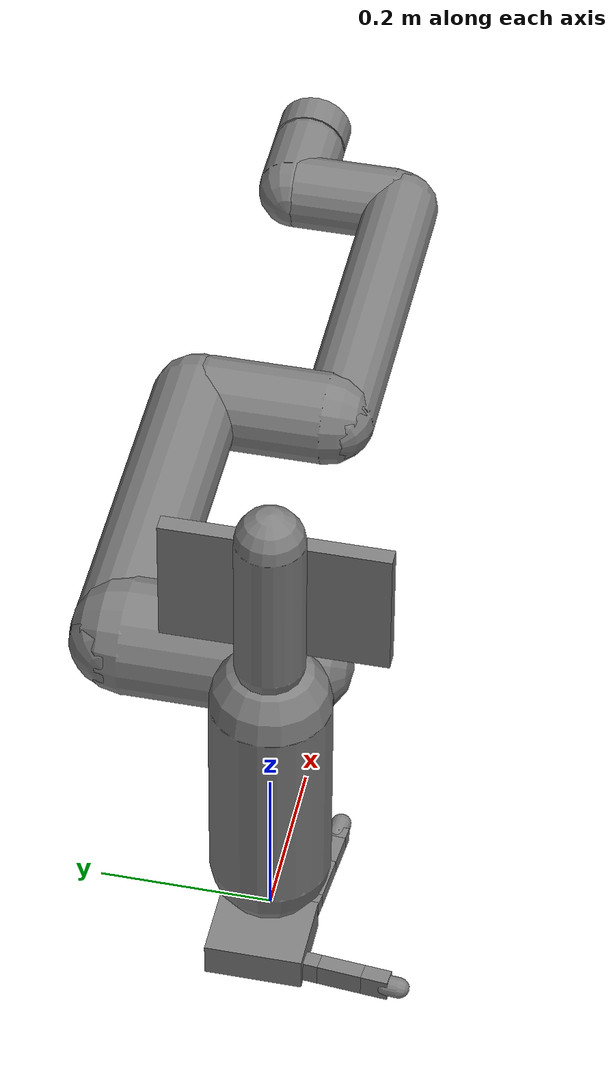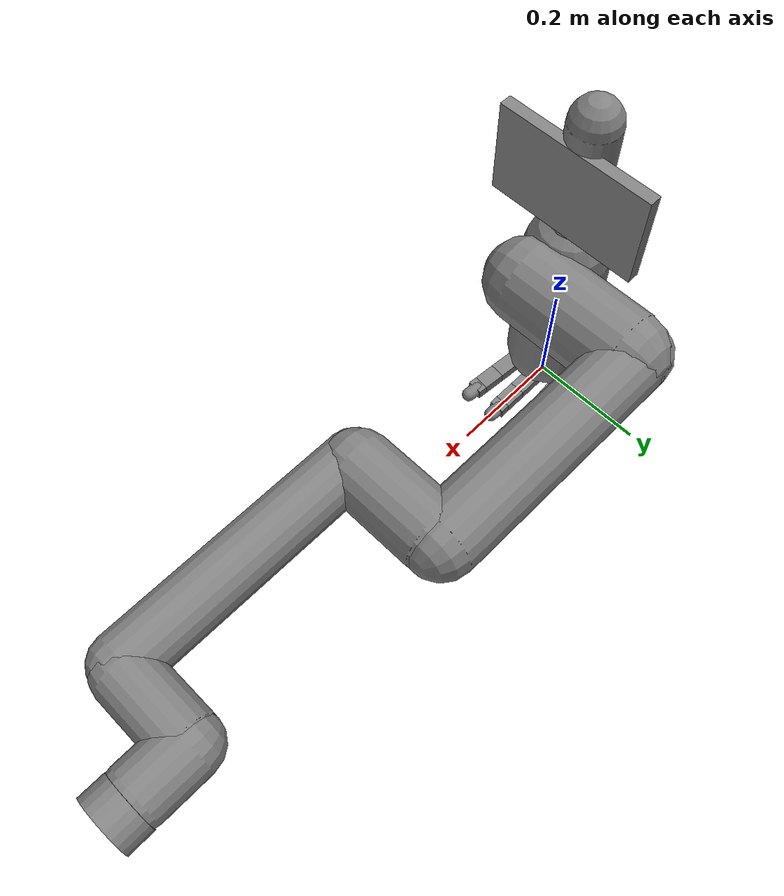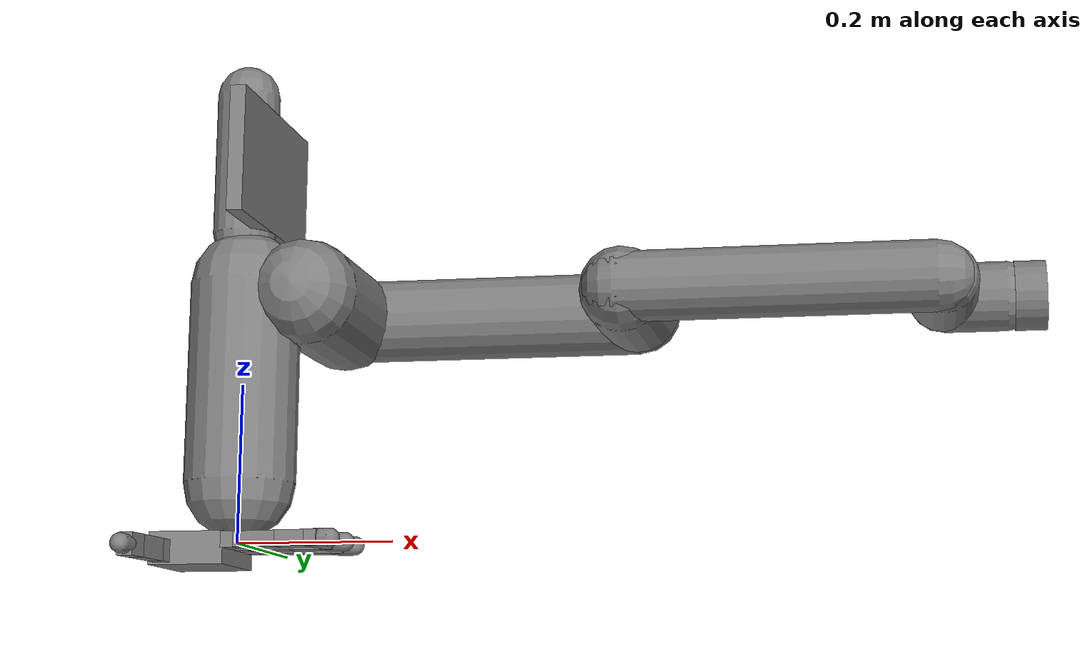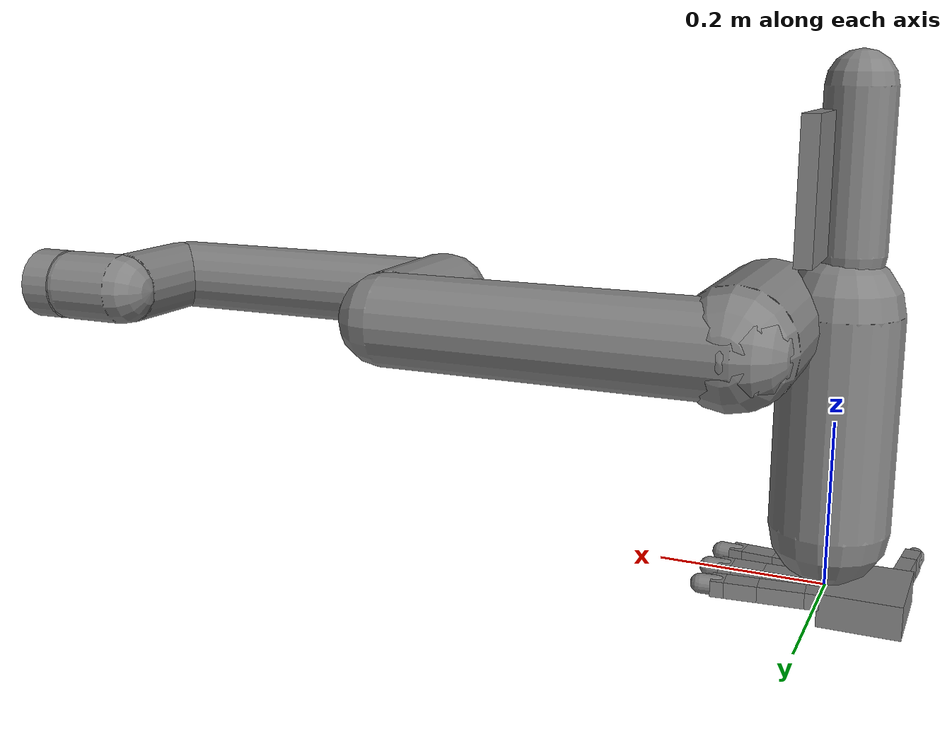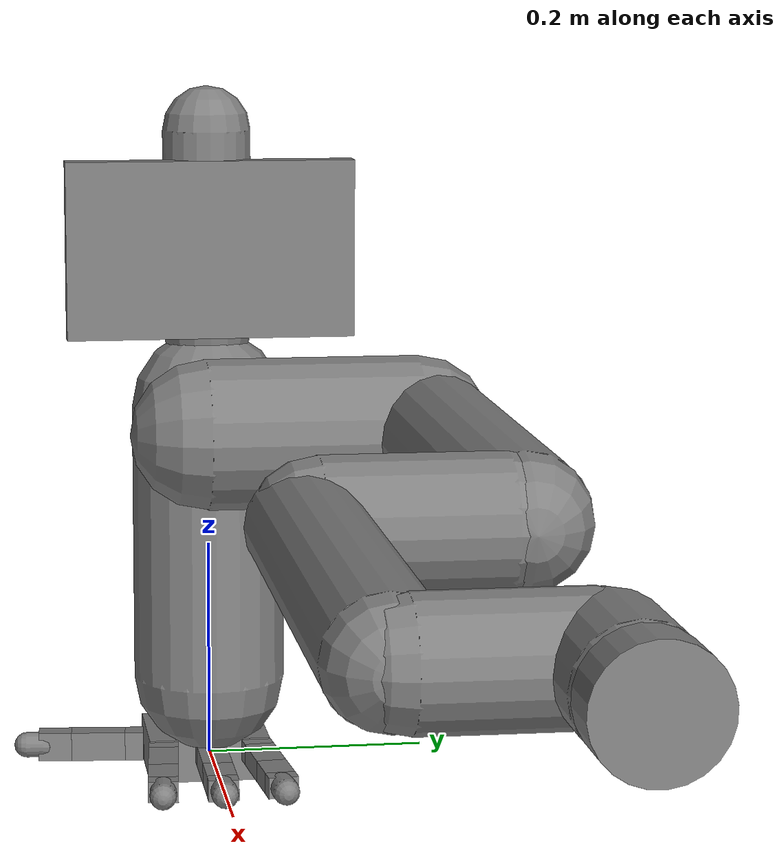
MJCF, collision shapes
<mujoco model="sawyer">
  <compiler autolimits="true" angle="radian"/>
  <option impratio="10" integrator="implicitfast" cone="elliptic"/>
  <default>
    <default class="/">
      <default class="sawyer">
        <material specular="0.5" shininess="0.25"/>
        <joint axis="0 0 1"/>
        <site group="4" rgba="0.5 0.5 0.5 0.29999999999999999" size="0.001"/>
        <general dyntype="none" biastype="affine"/>
        <default class="visual">
          <geom type="mesh" contype="0" conaffinity="0" group="2"/>
        </default>
        <default class="collision">
          <geom type="capsule" group="3" rgba="0.5 0.5 0.5 1"/>
          <default class="eef_collision">
            <geom type="cylinder"/>
          </default>
        </default>
        <default class="large_joint">
          <joint armature="1" damping="0.10000000000000001" frictionloss="0.29999999999999999"/>
          <general forcerange="-80 80" gainprm="800" biasprm="0 -800 -80"/>
        </default>
        <default class="medium_joint">
          <joint armature="1" damping="0.10000000000000001" frictionloss="0.29999999999999999"/>
          <general forcerange="-40 40" gainprm="800" biasprm="0 -800 -80"/>
        </default>
        <default class="small_joint">
          <joint armature="1" damping="0.10000000000000001" frictionloss="0.10000000000000001"/>
          <general forcerange="-9 9" gainprm="500" biasprm="0 -500 -50"/>
        </default>
      </default>
    </default>
    <default class="allegro_right/">
      <default class="allegro_right/allegro_right">
        <joint axis="0 1 0" damping="0.10000000000000001"/>
        <geom density="800"/>
        <position kp="1"/>
        <default class="allegro_right/visual">
          <geom type="mesh" contype="0" conaffinity="0" group="2" material="allegro_right/black"/>
          <default class="allegro_right/palm_visual">
            <geom mesh="allegro_right/base_link"/>
          </default>
          <default class="allegro_right/base_visual">
            <geom mesh="allegro_right/link_0.0"/>
          </default>
          <default class="allegro_right/proximal_visual">
            <geom mesh="allegro_right/link_1.0"/>
          </default>
          <default class="allegro_right/medial_visual">
            <geom mesh="allegro_right/link_2.0"/>
          </default>
          <default class="allegro_right/distal_visual">
            <geom mesh="allegro_right/link_3.0"/>
          </default>
          <default class="allegro_right/fingertip_visual">
            <geom material="allegro_right/white" pos="0 0 0.026700000000000002" mesh="allegro_right/link_3.0_tip"/>
          </default>
          <default class="allegro_right/thumbtip_visual">
            <geom material="allegro_right/white" pos="0 0 0.042299999999999997" mesh="allegro_right/link_15.0_tip"/>
          </default>
        </default>
        <default class="allegro_right/collision">
          <geom type="box" group="3" mass="0"/>
          <default class="allegro_right/palm_collision">
            <geom size="0.020400000000000001 0.056500000000000002 0.047500000000000001" pos="-0.0092999999999999992 0 -0.047500000000000001"/>
          </default>
          <default class="allegro_right/base_collision">
            <geom size="0.0097999999999999997 0.01375 0.0082000000000000007" pos="0 0 0.0082000000000000007"/>
            <default class="allegro_right/thumb_base_collision">
              <geom size="0.017899999999999999 0.017000000000000001 0.022749999999999999" pos="-0.017899999999999999 0.0089999999999999993 0.014500000000000001"/>
            </default>
          </default>
          <default class="allegro_right/proximal_collision">
            <geom size="0.0097999999999999997 0.01375 0.027" pos="0 0 0.027"/>
            <default class="allegro_right/thumb_proximal_collision">
              <geom size="0.0097999999999999997 0.01375 0.0088500000000000002" pos="0 0 0.0088500000000000002"/>
            </default>
          </default>
          <default class="allegro_right/medial_collision">
            <geom size="0.0097999999999999997 0.01375 0.019199999999999998" pos="0 0 0.019199999999999998"/>
            <default class="allegro_right/thumb_medial_collision">
              <geom size="0.0097999999999999997 0.01375 0.025700000000000001" pos="0 0 0.025700000000000001"/>
            </default>
          </default>
          <default class="allegro_right/distal_collision">
            <geom size="0.0097999999999999997 0.01375 0.0080000000000000002" pos="0 0 0.0080000000000000002"/>
            <default class="allegro_right/thumb_distal_collision">
              <geom size="0.0097999999999999997 0.01375 0.015699999999999999" pos="0 0 0.015699999999999999"/>
            </default>
          </default>
          <default class="allegro_right/fingertip_collision">
            <geom type="capsule" size="0.012 0.01" pos="0 0 0.019"/>
            <default class="allegro_right/thumbtip_collision">
              <geom type="capsule" size="0.012 0.0080000000000000002" pos="0 0 0.035000000000000003"/>
            </default>
          </default>
        </default>
        <default class="allegro_right/base">
          <joint axis="0 0 1" range="-0.46999999999999997 0.46999999999999997"/>
          <position ctrlrange="-0.46999999999999997 0.46999999999999997"/>
        </default>
        <default class="allegro_right/proximal">
          <joint range="-0.19600000000000001 1.6100000000000001"/>
          <position ctrlrange="-0.19600000000000001 1.6100000000000001"/>
        </default>
        <default class="allegro_right/medial">
          <joint range="-0.17399999999999999 1.7090000000000001"/>
          <position ctrlrange="-0.17399999999999999 1.7090000000000001"/>
        </default>
        <default class="allegro_right/distal">
          <joint range="-0.22700000000000001 1.6180000000000001"/>
          <position ctrlrange="-0.22700000000000001 1.6180000000000001"/>
        </default>
        <default class="allegro_right/thumb_base">
          <joint axis="-1 0 0" range="0.26300000000000001 1.3959999999999999"/>
          <position ctrlrange="0.26300000000000001 1.3959999999999999"/>
        </default>
        <default class="allegro_right/thumb_proximal">
          <joint axis="0 0 1" range="-0.105 1.163"/>
          <position ctrlrange="-0.105 1.163"/>
        </default>
        <default class="allegro_right/thumb_medial">
          <joint range="-0.189 1.6439999999999999"/>
          <position ctrlrange="-0.189 1.6439999999999999"/>
        </default>
        <default class="allegro_right/thumb_distal">
          <joint range="-0.16200000000000001 1.7190000000000001"/>
          <position ctrlrange="-0.16200000000000001 1.7190000000000001"/>
        </default>
      </default>
    </default>
  </default>
  <asset>
    <material name="red" class="sawyer" rgba="0.5 0.10000000000000001 0.10000000000000001 1"/>
    <material name="black" class="sawyer" rgba="0.20000000000000001 0.20000000000000001 0.20000000000000001 1"/>
    <material name="white" class="sawyer" rgba="1 1 1 1"/>
    <material name="off_white" class="sawyer" rgba="0.792157 0.819608 0.92941200000000002 1"/>
    <material name="Mtl3" class="sawyer" rgba="0.168627 0.15294099999999999 0.141176 1"/>
    <material name="Mtl4" class="sawyer" rgba="1 0.403922 0.121569 1"/>
    <material name="Mtl7" class="sawyer" rgba="0.25097999999999998 0.25097999999999998 0.25097999999999998 1"/>
    <material name="dark_black" class="sawyer" specular="0" shininess="0.25" rgba="0 0 0 1"/>
    <material name="Mtl5.001" class="sawyer" rgba="0.87058800000000003 0.30980400000000002 0.086275000000000004 1"/>
    <material name="Mtl7.001" class="sawyer" rgba="0.69803899999999997 0.69803899999999997 0.69803899999999997 1"/>
    <material name="Mtl5.002" class="sawyer" rgba="0.105882 0.105882 0.105882 1"/>
    <material name="Mtl6.002" class="sawyer" rgba="0.74902000000000002 0.74902000000000002 0.74902000000000002 1"/>
    <material name="Mtl4_001" class="sawyer" rgba="0.86666699999999997 0.90588199999999997 1 1"/>
    <material name="Mtl5_001" class="sawyer" rgba="0.50196099999999999 0.50196099999999999 0.50196099999999999 1"/>
    <mesh name="pedestal" class="/" file="pedestal-a8ce289c70ef2fbe3656936625519dab77a3e449.obj"/>
    <mesh name="base_0" class="/" file="base_0-e3c69b11217cc99a6ebef35034e82ce6ad62544f.obj"/>
    <mesh name="base_1" class="/" file="base_1-1b27cf0ab77a60d30c2f474d67d030603cd8a0ed.obj"/>
    <mesh name="l0_0" class="/" file="l0_0-bfd8421cca6fc421f583f72510ea3da7a0b62e33.obj"/>
    <mesh name="l0_1" class="/" file="l0_1-7f935f81699f71e2767a0e7b56c346e82fc9bab9.obj"/>
    <mesh name="l0_2" class="/" file="l0_2-e6dab98c0d1fecde91b82397fa06b19d6c1e152e.obj"/>
    <mesh name="l0_3" class="/" file="l0_3-f3715a4a55225931c35c504a394399072f0600b3.obj"/>
    <mesh name="l0_4" class="/" file="l0_4-a71b0e374f76a29b37d24b954db7b94f644578ae.obj"/>
    <mesh name="l0_5" class="/" file="l0_5-a90e223b0c658f5b6081b6b6f496b9e05796bf73.obj"/>
    <mesh name="l0_6" class="/" file="l0_6-cd6e50d1473c8481da615a7d692cf330380bccad.obj"/>
    <mesh name="l1_0" class="/" file="l1_0-7eacbb6994c2159d56b7a89d2d31f5071140c948.obj"/>
    <mesh name="l1_1" class="/" file="l1_1-4875b5910d9ab6a07903e2c5318decb9174ad0be.obj"/>
    <mesh name="l1_2" class="/" file="l1_2-44bea896fd84e495c4265bec10dc967f8affd935.obj"/>
    <mesh name="l2_0" class="/" file="l2_0-022f1d7c8810f7c9e9541fe792e03517cbddb6aa.obj"/>
    <mesh name="l2_1" class="/" file="l2_1-923370617526fabafff02369c49738702485169f.obj"/>
    <mesh name="l2_2" class="/" file="l2_2-959e4d3650afe70f07b1f58255213a316d0d0abe.obj"/>
    <mesh name="l2_3" class="/" file="l2_3-38948a6a3102220ac502556b1e363a62f6091396.obj"/>
    <mesh name="l2_4" class="/" file="l2_4-7c9bf06a2ac2f4b2b883e57a183a8197f8c64d38.obj"/>
    <mesh name="l3_0" class="/" file="l3_0-bb317ad3801d0e1c5223c26dcbf64f4693784405.obj"/>
    <mesh name="l3_1" class="/" file="l3_1-777964f977a151ee6b41bb61a6af9f9710f0e7f4.obj"/>
    <mesh name="l3_2" class="/" file="l3_2-756aa2312b536f9746bb6bfdd3d8509ad7e3929e.obj"/>
    <mesh name="l3_3" class="/" file="l3_3-2e69da71eaf6ae73a1e73298ea37177adcda1d41.obj"/>
    <mesh name="l4_0" class="/" file="l4_0-ceaf8e6e14f6c3ad5e7b0b95af6baa1af3350c7f.obj"/>
    <mesh name="l4_1" class="/" file="l4_1-19f599541b4d1ab5db1920fbbfd4ee30a191d994.obj"/>
    <mesh name="l4_2" class="/" file="l4_2-932f9a67fe2b304e7de7820c3500d87732de4b2c.obj"/>
    <mesh name="l4_3" class="/" file="l4_3-9240e8b597082b07a50bd172bb1dde42ca2153a9.obj"/>
    <mesh name="l4_4" class="/" file="l4_4-d3d681a83da9f243a92340a9fae6374cae273994.obj"/>
    <mesh name="l4_5" class="/" file="l4_5-55b47f2b9156cd57630b550dafd65dd6e10dc59d.obj"/>
    <mesh name="l4_6" class="/" file="l4_6-e8a68ad1adca49c339fd4fc2d7528edf7b53013a.obj"/>
    <mesh name="l4_7" class="/" file="l4_7-478a5fd5903a162860bd2242c29903f4d9d65b0b.obj"/>
    <mesh name="l5_0" class="/" file="l5_0-e28b7c72f3b561a1e1fb13879e84d2be0ff379e4.obj"/>
    <mesh name="l5_1" class="/" file="l5_1-39873ef73feae55d672b666abae66201b39f158b.obj"/>
    <mesh name="l5_2" class="/" file="l5_2-2745d0fc90cb02cc28308c1f750efe818dd85dc4.obj"/>
    <mesh name="l5_3" class="/" file="l5_3-02325eeb76b7f1987af3c999a6c59cc53dcfb33d.obj"/>
    <mesh name="l5_4" class="/" file="l5_4-82c2d6db1cf0cdebf4e806d0c926f9d9c01300a9.obj"/>
    <mesh name="l6_0" class="/" file="l6_0-ae26e99ee90c0ed8f02e80a1428baf10b4d61772.obj"/>
    <mesh name="l6_1" class="/" file="l6_1-d99d2f1d57fa32940efc1c6cbca1014fc2f1190e.obj"/>
    <mesh name="l6_2" class="/" file="l6_2-ac713e4bcaa3d4a5b5a1cad31ed774a421197fdd.obj"/>
    <mesh name="l6_3" class="/" file="l6_3-8112b88536cbd4a72815b8c4681323c544cd9e93.obj"/>
    <mesh name="l6_4" class="/" file="l6_4-30db8abfdbf4701baa5cdb387396d5b30cbbd498.obj"/>
    <mesh name="l6_5" class="/" file="l6_5-343d89ac2f45b45d75a1b15d5df01e08cdf6632f.obj"/>
    <mesh name="head_0" class="/" file="head_0-b2069d64f6f582a381f4a30b81c8306fd8cad95a.obj"/>
    <mesh name="head_2" class="/" file="head_2-f4c910ba7a898bbe9ddb000c9d9d58bb96785f51.obj"/>
    <mesh name="head_3" class="/" file="head_3-977f2e7873515cf9b082c05283476e6b6fcb02e2.obj"/>
    <mesh name="head_5" class="/" file="head_5-ed3add44af8c0b2e8f59e6bc574419baa30e4526.obj"/>
    <mesh name="head_6" class="/" file="head_6-cf9b4be1931aecae0daab7914957d4154b472cbe.obj"/>
    <mesh name="head_7" class="/" file="head_7-68677af1b44b2c62a7677c2c3b0968d603ea479a.obj"/>
    <mesh name="head_8" class="/" file="head_8-486757fc2b2d27d00511be06baf3b1e0d62c1280.obj"/>
    <mesh name="head_9" class="/" file="head_9-e3cdd4d790d7df8896b0989ac2d9bfcd104b8cd4.obj"/>
    <material name="allegro_right/black" class="allegro_right/" rgba="0.20000000000000001 0.20000000000000001 0.20000000000000001 1"/>
    <material name="allegro_right/white" class="allegro_right/" rgba="0.90000000000000002 0.90000000000000002 0.90000000000000002 1"/>
    <mesh name="allegro_right/base_link" class="allegro_right/" file="base_link-7836bd26b2e8c065fc75b7e51e2fbbf822d839a4.stl"/>
    <mesh name="allegro_right/link_0.0" class="allegro_right/" file="link_0.0-12a82724ffe834458ce78987e5ee97931d18d6be.stl"/>
    <mesh name="allegro_right/link_1.0" class="allegro_right/" file="link_1.0-8beb3a85ac93bcadd6887956bb5273cd4609ce35.stl"/>
    <mesh name="allegro_right/link_2.0" class="allegro_right/" file="link_2.0-766a7c6987c20a3cbba963f04746bcc2fd8d2614.stl"/>
    <mesh name="allegro_right/link_3.0" class="allegro_right/" file="link_3.0-068878c6ab2905e135e2a9fe75037e0242fc64cf.stl"/>
    <mesh name="allegro_right/link_3.0_tip" class="allegro_right/" file="link_3.0_tip-b8c99e6c36b0f212f872e371ae0951f7d5b5ee25.stl"/>
    <mesh name="allegro_right/link_12.0_right" class="allegro_right/" file="link_12.0_right-5e9f83a4a9a0d42c0fdb29a27e8f5fcbfa02cba0.stl"/>
    <mesh name="allegro_right/link_13.0" class="allegro_right/" file="link_13.0-177d0ed60a05fc8004b58ac6229b7a7c182502bc.stl"/>
    <mesh name="allegro_right/link_14.0" class="allegro_right/" file="link_14.0-543eb3697f9345671f649ea6249b0d777da497c2.stl"/>
    <mesh name="allegro_right/link_15.0" class="allegro_right/" file="link_15.0-70d762d6e131e1b5aa9775d66dc405b0eebc35bf.stl"/>
    <mesh name="allegro_right/link_15.0_tip" class="allegro_right/" file="link_15.0_tip-e455a81eb4eeac01d295e9d481eafec9277994bb.stl"/>
  </asset>
  <worldbody>
    <light name="top" class="/" mode="trackcom" pos="0 0 2"/>
    <body name="base" childclass="sawyer">
      <inertial pos="-0.00062410000000000005 -2.8025e-05 0.065404000000000004" mass="2.0687000000000002" fullinertia="0.0067599000000000001 0.0067876999999999998 0.0074031000000000001 -4.2024000000000003e-05 -6.1903999999999996e-07 1.5888000000000001e-05"/>
      <geom name="sawyer//unnamed_geom_0" class="visual" material="black" mesh="base_0"/>
      <geom name="sawyer//unnamed_geom_1" class="visual" material="red" mesh="base_1"/>
      <body name="right_l0" pos="0 0 0.080000000000000002">
        <inertial pos="0.024364500000000001 0.010968800000000001 0.14363100000000001" quat="0.89482099999999998 0.0089945000000000008 -0.17027999999999999 0.412576" mass="5.3212999999999999" diaginertia="0.065159900000000007 0.051095399999999999 0.018622099999999999"/>
        <joint name="right_j0" class="large_joint" range="-3.0503 3.0503"/>
        <geom name="sawyer//unnamed_geom_2" class="visual" material="Mtl7" mesh="l0_0"/>
        <geom name="sawyer//unnamed_geom_3" class="visual" material="off_white" mesh="l0_1"/>
        <geom name="sawyer//unnamed_geom_4" class="visual" material="red" mesh="l0_2"/>
        <geom name="sawyer//unnamed_geom_5" class="visual" material="Mtl4" mesh="l0_3"/>
        <geom name="sawyer//unnamed_geom_6" class="visual" material="Mtl3" mesh="l0_4"/>
        <geom name="sawyer//unnamed_geom_7" class="visual" material="white" mesh="l0_5"/>
        <geom name="sawyer//unnamed_geom_8" class="visual" material="black" mesh="l0_6"/>
        <geom name="sawyer//unnamed_geom_9" class="collision" size="0.070000000000000007" fromto="0 0 -0.0050000000000000001 0 0 0.25"/>
        <body name="head" pos="0 0 0.29649999999999999">
          <inertial pos="0.0053222599999999997 -2.6547299999999999e-05 0.1021" quat="0.99999300000000002 7.0838400000000003e-05 -0.0035981199999999998 -0.00062626700000000001" mass="1.5794999999999999" diaginertia="0.011833400000000001 0.0082709700000000008 0.0049658200000000001"/>
          <geom name="sawyer//unnamed_geom_10" class="visual" material="black" mesh="head_0"/>
          <geom name="sawyer//unnamed_geom_11" class="visual" material="off_white" mesh="head_2"/>
          <geom name="sawyer//unnamed_geom_12" class="visual" material="Mtl7" mesh="head_3"/>
          <geom name="sawyer//unnamed_geom_13" class="visual" material="black" mesh="head_5"/>
          <geom name="sawyer//unnamed_geom_14" class="visual" material="white" mesh="head_6"/>
          <geom name="sawyer//unnamed_geom_15" class="visual" material="dark_black" mesh="head_7"/>
          <geom name="sawyer//unnamed_geom_16" class="visual" material="red" mesh="head_8"/>
          <geom name="sawyer//unnamed_geom_17" class="visual" material="Mtl5.001" mesh="head_9"/>
          <geom name="sawyer//unnamed_geom_18" class="collision" size="0.040000000000000001" fromto="-0.0050000000000000001 0 0.02 -0.0050000000000000001 0 0.20499999999999999"/>
          <geom name="sawyer//unnamed_geom_19" class="collision" type="box" size="0.01 0.13 0.080000000000000002" pos="0.025000000000000001 0 0.10000000000000001"/>
        </body>
        <body name="right_l1" pos="0.081000000000000003 0.050000000000000003 0.23699999999999999" quat="1 -1 1 1">
          <inertial pos="-0.0030848999999999998 -0.026811000000000001 0.092521000000000006" quat="0.42488799999999999 0.89198699999999997 0.13236400000000001 -0.079429399999999997" mass="4.5049999999999999" diaginertia="0.0224339 0.022162399999999999 0.0097097099999999999"/>
          <joint name="right_j1" class="large_joint" range="-3.8094999999999999 2.2736000000000001"/>
          <geom name="sawyer//unnamed_geom_20" class="visual" material="black" mesh="l1_0"/>
          <geom name="sawyer//unnamed_geom_21" class="visual" material="red" mesh="l1_1"/>
          <geom name="sawyer//unnamed_geom_22" class="visual" material="white" mesh="l1_2"/>
          <geom name="sawyer//unnamed_geom_23" class="collision" size="0.068000000000000005" fromto="0 0 -0.059999999999999998 0 0 0.13"/>
          <body name="right_l2" pos="0 -0.14000000000000001 0.14249999999999999" quat="1 1 0 0">
            <inertial pos="-0.00016044 -0.014966999999999999 0.13582" quat="0.70783099999999999 -0.052476099999999998 0.051600600000000003 0.70253699999999997" mass="1.7450000000000001" diaginertia="0.025792800000000001 0.025506000000000001 0.00292516"/>
            <joint name="right_j2" class="medium_joint" range="-3.0426000000000002 3.0426000000000002"/>
            <geom name="sawyer//unnamed_geom_24" class="visual" material="off_white" mesh="l2_0"/>
            <geom name="sawyer//unnamed_geom_25" class="visual" material="Mtl5.002" mesh="l2_1"/>
            <geom name="sawyer//unnamed_geom_26" class="visual" material="white" mesh="l2_2"/>
            <geom name="sawyer//unnamed_geom_27" class="visual" material="black" mesh="l2_3"/>
            <geom name="sawyer//unnamed_geom_28" class="visual" material="red" mesh="l2_4"/>
            <geom name="sawyer//unnamed_geom_29" class="collision" size="0.055" fromto="0 0 -0.14999999999999999 0 0 0.26000000000000001"/>
            <body name="right_l3" pos="0 -0.042000000000000003 0.26000000000000001" quat="1 -1 0 0">
              <inertial pos="-0.0048135000000000001 -0.0281 -0.084154000000000007" quat="0.902999 0.38539099999999998 -0.088090100000000005 0.16824700000000001" mass="2.5097" diaginertia="0.0102404 0.0096997000000000003 0.0036962200000000001"/>
              <joint name="right_j3" class="medium_joint" range="-3.0438999999999998 3.0438999999999998"/>
              <geom name="sawyer//unnamed_geom_30" class="visual" material="off_white" mesh="l3_0"/>
              <geom name="sawyer//unnamed_geom_31" class="visual" material="red" mesh="l3_1"/>
              <geom name="sawyer//unnamed_geom_32" class="visual" material="white" mesh="l3_2"/>
              <geom name="sawyer//unnamed_geom_33" class="visual" material="black" mesh="l3_3"/>
              <geom name="sawyer//unnamed_geom_34" class="collision" size="0.055" fromto="0 0 -0.115 0 0 0.029999999999999999"/>
              <body name="right_l4" pos="0 -0.125 -0.1265" quat="1 1 0 0">
                <inertial pos="-0.0018891699999999999 0.0068994800000000004 0.13409499999999999" quat="0.80324700000000004 0.031244000000000001 -0.0298409 0.59407699999999997" mass="1.1135999999999999" diaginertia="0.013655499999999999 0.013549800000000001 0.00127385"/>
                <joint name="right_j4" class="small_joint" range="-2.9761000000000002 2.9761000000000002"/>
                <geom name="sawyer//unnamed_geom_35" class="visual" material="Mtl7" mesh="l4_0"/>
                <geom name="sawyer//unnamed_geom_36" class="visual" material="black" mesh="l4_1"/>
                <geom name="sawyer//unnamed_geom_37" class="visual" material="Mtl6.002" mesh="l4_2"/>
                <geom name="sawyer//unnamed_geom_38" class="visual" material="white" mesh="l4_3"/>
                <geom name="sawyer//unnamed_geom_39" class="visual" material="off_white" mesh="l4_4"/>
                <geom name="sawyer//unnamed_geom_40" class="visual" material="dark_black" mesh="l4_5"/>
                <geom name="sawyer//unnamed_geom_41" class="visual" material="red" mesh="l4_6"/>
                <geom name="sawyer//unnamed_geom_42" class="visual" material="black" mesh="l4_7"/>
                <geom name="sawyer//unnamed_geom_43" class="collision" size="0.044999999999999998" fromto="0 0 -0.13 0 0 0.27000000000000002"/>
                <body name="right_l5" pos="0 0.031 0.27500000000000002" quat="1 -1 0 0">
                  <inertial pos="0.0061133000000000003 -0.023696999999999999 0.076415999999999998" quat="0.40407599999999999 0.91349999999999998 0.0473125 0.0015833500000000001" mass="1.5625" diaginertia="0.0047413100000000003 0.0042285700000000001 0.00190672"/>
                  <joint name="right_j5" class="small_joint" range="-2.9761000000000002 2.9761000000000002"/>
                  <geom name="sawyer//unnamed_geom_44" class="visual" material="Mtl5_001" mesh="l5_0"/>
                  <geom name="sawyer//unnamed_geom_45" class="visual" material="Mtl4_001" mesh="l5_1"/>
                  <geom name="sawyer//unnamed_geom_46" class="visual" material="white" mesh="l5_2"/>
                  <geom name="sawyer//unnamed_geom_47" class="visual" material="red" mesh="l5_3"/>
                  <geom name="sawyer//unnamed_geom_48" class="visual" material="black" mesh="l5_4"/>
                  <geom name="sawyer//unnamed_geom_49" class="collision" size="0.044999999999999998" fromto="0 0 -0.02 0 0 0.10000000000000001"/>
                  <geom name="sawyer//unnamed_geom_50" class="collision" size="0.044999999999999998" fromto="0 0 0.105 0 -0.082000000000000003 0.105"/>
                  <body name="right_l6" pos="0 -0.11 0.1053" quat="0.0616248 0.061629999999999997 -0.70441600000000004 0.70441600000000004">
                    <inertial pos="-8.0725999999999996e-06 0.0085838000000000008 -0.0049566000000000002" quat="0.47904400000000003 0.51563599999999998 -0.513069 0.49132100000000001" mass="0.32919999999999999" diaginertia="0.00036026800000000001 0.00031107800000000001 0.00021498399999999999"/>
                    <joint name="right_j6" class="small_joint" range="-4.7123999999999997 4.7123999999999997"/>
                    <geom name="sawyer//unnamed_geom_51" class="visual" material="Mtl4" mesh="l6_0"/>
                    <geom name="sawyer//unnamed_geom_52" class="visual" material="white" mesh="l6_1"/>
                    <geom name="sawyer//unnamed_geom_53" class="visual" material="red" mesh="l6_2"/>
                    <geom name="sawyer//unnamed_geom_54" class="visual" material="black" mesh="l6_3"/>
                    <geom name="sawyer//unnamed_geom_55" class="visual" material="black" mesh="l6_4"/>
                    <geom name="sawyer//unnamed_geom_56" class="visual" material="black" mesh="l6_5"/>
                    <geom name="sawyer//unnamed_geom_57" class="eef_collision" size="0.044999999999999998 0.02"/>
                    <site name="attachment_site" pos="0 0 0.024500000000000001" quat="0 0 0 1"/>
                  </body>
                </body>
              </body>
            </body>
          </body>
        </body>
      </body>
    </body>
    <body name="allegro_right/">
      <body name="allegro_right/palm" childclass="allegro_right/allegro_right" quat="0 1 0 1">
        <geom name="sawyer/allegro_right//unnamed_geom_0" class="allegro_right/palm_visual" mesh="allegro_right/base_link"/>
        <geom name="sawyer/allegro_right//unnamed_geom_1" class="allegro_right/palm_collision"/>
        <body name="allegro_right/ff_base" pos="0 0.043499999999999997 -0.001542" quat="0.99904800000000005 -0.043619400000000003 0 0">
          <joint name="allegro_right/ffj0" class="allegro_right/base"/>
          <geom name="sawyer/allegro_right//unnamed_geom_2" class="allegro_right/base_visual"/>
          <geom name="sawyer/allegro_right//unnamed_geom_3" class="allegro_right/base_collision"/>
          <body name="allegro_right/ff_proximal" pos="0 0 0.016400000000000001">
            <joint name="allegro_right/ffj1" class="allegro_right/proximal"/>
            <geom name="sawyer/allegro_right//unnamed_geom_4" class="allegro_right/proximal_visual"/>
            <geom name="sawyer/allegro_right//unnamed_geom_5" class="allegro_right/proximal_collision"/>
            <body name="allegro_right/ff_medial" pos="0 0 0.053999999999999999">
              <joint name="allegro_right/ffj2" class="allegro_right/medial"/>
              <geom name="sawyer/allegro_right//unnamed_geom_6" class="allegro_right/medial_visual"/>
              <geom name="sawyer/allegro_right//unnamed_geom_7" class="allegro_right/medial_collision"/>
              <body name="allegro_right/ff_distal" pos="0 0 0.038399999999999997">
                <joint name="allegro_right/ffj3" class="allegro_right/distal"/>
                <geom name="sawyer/allegro_right//unnamed_geom_8" class="allegro_right/distal_visual"/>
                <geom name="sawyer/allegro_right//unnamed_geom_9" class="allegro_right/distal_collision"/>
                <body name="allegro_right/ff_tip">
                  <geom name="sawyer/allegro_right//unnamed_geom_10" class="allegro_right/fingertip_visual"/>
                  <geom name="sawyer/allegro_right//unnamed_geom_11" class="allegro_right/fingertip_collision"/>
                </body>
              </body>
            </body>
          </body>
        </body>
        <body name="allegro_right/mf_base" pos="0 0 0.00069999999999999999">
          <joint name="allegro_right/mfj0" class="allegro_right/base"/>
          <geom name="sawyer/allegro_right//unnamed_geom_12" class="allegro_right/base_visual"/>
          <geom name="sawyer/allegro_right//unnamed_geom_13" class="allegro_right/base_collision"/>
          <body name="allegro_right/mf_proximal" pos="0 0 0.016400000000000001">
            <joint name="allegro_right/mfj1" class="allegro_right/proximal"/>
            <geom name="sawyer/allegro_right//unnamed_geom_14" class="allegro_right/proximal_visual"/>
            <geom name="sawyer/allegro_right//unnamed_geom_15" class="allegro_right/proximal_collision"/>
            <body name="allegro_right/mf_medial" pos="0 0 0.053999999999999999">
              <joint name="allegro_right/mfj2" class="allegro_right/medial"/>
              <geom name="sawyer/allegro_right//unnamed_geom_16" class="allegro_right/medial_visual"/>
              <geom name="sawyer/allegro_right//unnamed_geom_17" class="allegro_right/medial_collision"/>
              <body name="allegro_right/mf_distal" pos="0 0 0.038399999999999997">
                <joint name="allegro_right/mfj3" class="allegro_right/distal"/>
                <geom name="sawyer/allegro_right//unnamed_geom_18" class="allegro_right/distal_visual"/>
                <geom name="sawyer/allegro_right//unnamed_geom_19" class="allegro_right/distal_collision"/>
                <body name="allegro_right/mf_tip">
                  <geom name="sawyer/allegro_right//unnamed_geom_20" class="allegro_right/fingertip_visual"/>
                  <geom name="sawyer/allegro_right//unnamed_geom_21" class="allegro_right/fingertip_collision"/>
                </body>
              </body>
            </body>
          </body>
        </body>
        <body name="allegro_right/rf_base" pos="0 -0.043499999999999997 -0.001542" quat="0.99904800000000005 0.043619400000000003 0 0">
          <joint name="allegro_right/rfj0" class="allegro_right/base"/>
          <geom name="sawyer/allegro_right//unnamed_geom_22" class="allegro_right/base_visual"/>
          <geom name="sawyer/allegro_right//unnamed_geom_23" class="allegro_right/base_collision"/>
          <body name="allegro_right/rf_proximal" pos="0 0 0.016400000000000001">
            <joint name="allegro_right/rfj1" class="allegro_right/proximal"/>
            <geom name="sawyer/allegro_right//unnamed_geom_24" class="allegro_right/proximal_visual"/>
            <geom name="sawyer/allegro_right//unnamed_geom_25" class="allegro_right/proximal_collision"/>
            <body name="allegro_right/rf_medial" pos="0 0 0.053999999999999999">
              <joint name="allegro_right/rfj2" class="allegro_right/medial"/>
              <geom name="sawyer/allegro_right//unnamed_geom_26" class="allegro_right/medial_visual"/>
              <geom name="sawyer/allegro_right//unnamed_geom_27" class="allegro_right/medial_collision"/>
              <body name="allegro_right/rf_distal" pos="0 0 0.038399999999999997">
                <joint name="allegro_right/rfj3" class="allegro_right/distal"/>
                <geom name="sawyer/allegro_right//unnamed_geom_28" class="allegro_right/distal_visual"/>
                <geom name="sawyer/allegro_right//unnamed_geom_29" class="allegro_right/distal_collision"/>
                <body name="allegro_right/rf_tip">
                  <geom name="sawyer/allegro_right//unnamed_geom_30" class="allegro_right/fingertip_visual"/>
                  <geom name="sawyer/allegro_right//unnamed_geom_31" class="allegro_right/fingertip_collision"/>
                </body>
              </body>
            </body>
          </body>
        </body>
        <body name="allegro_right/th_base" pos="-0.018200000000000001 0.019332999999999999 -0.045987" quat="0.47771400000000003 -0.52133399999999996 -0.52133399999999996 -0.47771400000000003">
          <joint name="allegro_right/thj0" class="allegro_right/thumb_base"/>
          <geom name="sawyer/allegro_right//unnamed_geom_32" class="allegro_right/visual" mesh="allegro_right/link_12.0_right"/>
          <geom name="sawyer/allegro_right//unnamed_geom_33" class="allegro_right/thumb_base_collision"/>
          <body name="allegro_right/th_proximal" pos="-0.027 0.0050000000000000001 0.039899999999999998">
            <joint name="allegro_right/thj1" class="allegro_right/thumb_proximal"/>
            <geom name="sawyer/allegro_right//unnamed_geom_34" class="allegro_right/visual" mesh="allegro_right/link_13.0"/>
            <geom name="sawyer/allegro_right//unnamed_geom_35" class="allegro_right/thumb_proximal_collision"/>
            <body name="allegro_right/th_medial" pos="0 0 0.0177">
              <joint name="allegro_right/thj2" class="allegro_right/thumb_medial"/>
              <geom name="sawyer/allegro_right//unnamed_geom_36" class="allegro_right/visual" mesh="allegro_right/link_14.0"/>
              <geom name="sawyer/allegro_right//unnamed_geom_37" class="allegro_right/thumb_medial_collision"/>
              <body name="allegro_right/th_distal" pos="0 0 0.051400000000000001">
                <joint name="allegro_right/thj3" class="allegro_right/thumb_distal"/>
                <geom name="sawyer/allegro_right//unnamed_geom_38" class="allegro_right/visual" mesh="allegro_right/link_15.0"/>
                <geom name="sawyer/allegro_right//unnamed_geom_39" class="allegro_right/thumb_distal_collision"/>
                <body name="allegro_right/th_tip">
                  <geom name="sawyer/allegro_right//unnamed_geom_40" class="allegro_right/thumbtip_visual"/>
                  <geom name="sawyer/allegro_right//unnamed_geom_41" class="allegro_right/thumbtip_collision"/>
                </body>
              </body>
            </body>
          </body>
        </body>
      </body>
    </body>
  </worldbody>
  <contact>
    <exclude name="sawyer//unnamed_contact_0" body1="base" body2="right_l0"/>
    <exclude name="sawyer/allegro_right//unnamed_contact_0" body1="allegro_right/palm" body2="allegro_right/ff_base"/>
    <exclude name="sawyer/allegro_right//unnamed_contact_1" body1="allegro_right/palm" body2="allegro_right/mf_base"/>
    <exclude name="sawyer/allegro_right//unnamed_contact_2" body1="allegro_right/palm" body2="allegro_right/rf_base"/>
    <exclude name="sawyer/allegro_right//unnamed_contact_3" body1="allegro_right/palm" body2="allegro_right/th_base"/>
    <exclude name="sawyer/allegro_right//unnamed_contact_4" body1="allegro_right/palm" body2="allegro_right/th_proximal"/>
  </contact>
  <actuator>
    <general name="a0" class="large_joint" ctrlrange="-3.0503 3.0503" joint="right_j0"/>
    <general name="a1" class="large_joint" ctrlrange="-3.8094999999999999 2.2736000000000001" joint="right_j1"/>
    <general name="a2" class="medium_joint" ctrlrange="-3.0426000000000002 3.0426000000000002" joint="right_j2"/>
    <general name="a3" class="medium_joint" ctrlrange="-3.0438999999999998 3.0438999999999998" joint="right_j3"/>
    <general name="a4" class="small_joint" ctrlrange="-2.9761000000000002 2.9761000000000002" joint="right_j4"/>
    <general name="a5" class="small_joint" ctrlrange="-2.9761000000000002 2.9761000000000002" joint="right_j5"/>
    <general name="a6" class="small_joint" ctrlrange="-4.7123999999999997 4.7123999999999997" joint="right_j6"/>
    <position name="allegro_right/ffa0" class="allegro_right/base" joint="allegro_right/ffj0"/>
    <position name="allegro_right/ffa1" class="allegro_right/proximal" joint="allegro_right/ffj1"/>
    <position name="allegro_right/ffa2" class="allegro_right/medial" joint="allegro_right/ffj2"/>
    <position name="allegro_right/ffa3" class="allegro_right/distal" joint="allegro_right/ffj3"/>
    <position name="allegro_right/mfa0" class="allegro_right/base" joint="allegro_right/mfj0"/>
    <position name="allegro_right/mfa1" class="allegro_right/proximal" joint="allegro_right/mfj1"/>
    <position name="allegro_right/mfa2" class="allegro_right/medial" joint="allegro_right/mfj2"/>
    <position name="allegro_right/mfa3" class="allegro_right/distal" joint="allegro_right/mfj3"/>
    <position name="allegro_right/rfa0" class="allegro_right/base" joint="allegro_right/rfj0"/>
    <position name="allegro_right/rfa1" class="allegro_right/proximal" joint="allegro_right/rfj1"/>
    <position name="allegro_right/rfa2" class="allegro_right/medial" joint="allegro_right/rfj2"/>
    <position name="allegro_right/rfa3" class="allegro_right/distal" joint="allegro_right/rfj3"/>
    <position name="allegro_right/tha0" class="allegro_right/thumb_base" joint="allegro_right/thj0"/>
    <position name="allegro_right/tha1" class="allegro_right/thumb_proximal" joint="allegro_right/thj1"/>
    <position name="allegro_right/tha2" class="allegro_right/thumb_medial" joint="allegro_right/thj2"/>
    <position name="allegro_right/tha3" class="allegro_right/thumb_distal" joint="allegro_right/thj3"/>
  </actuator>
</mujoco>
